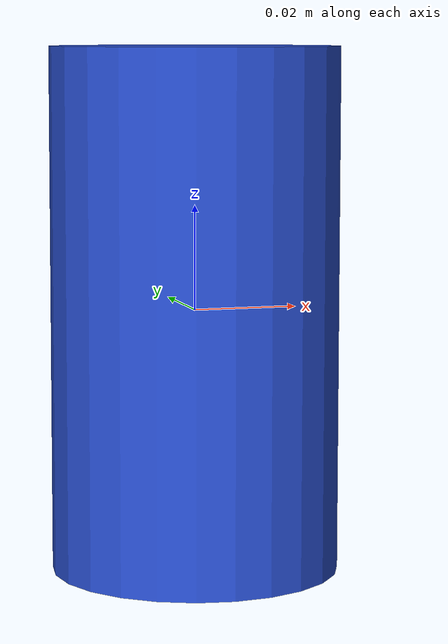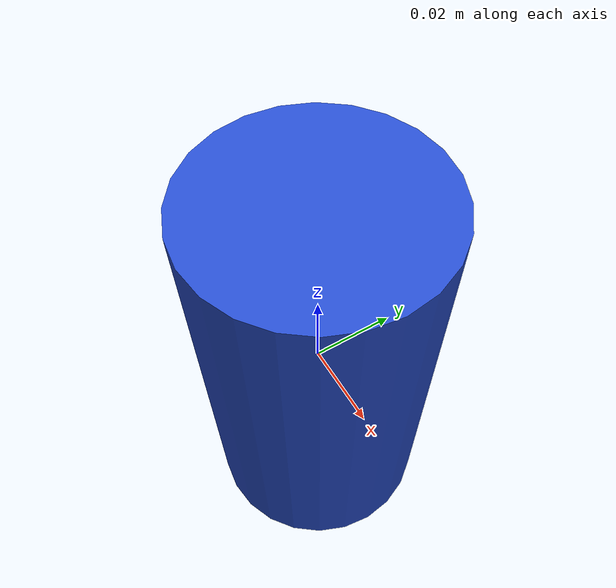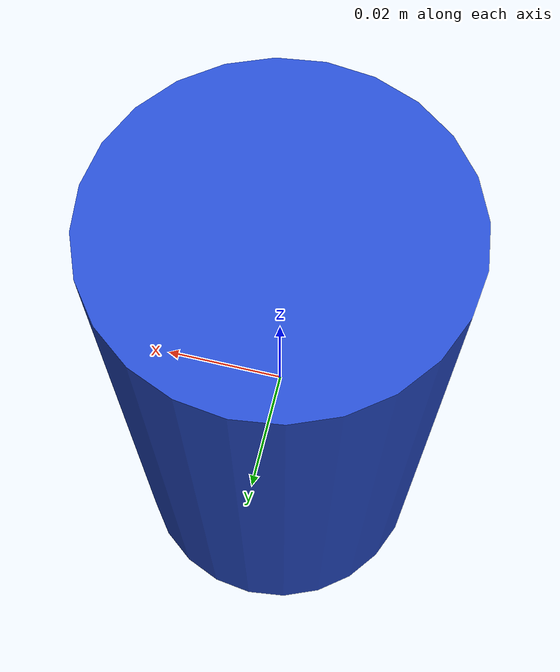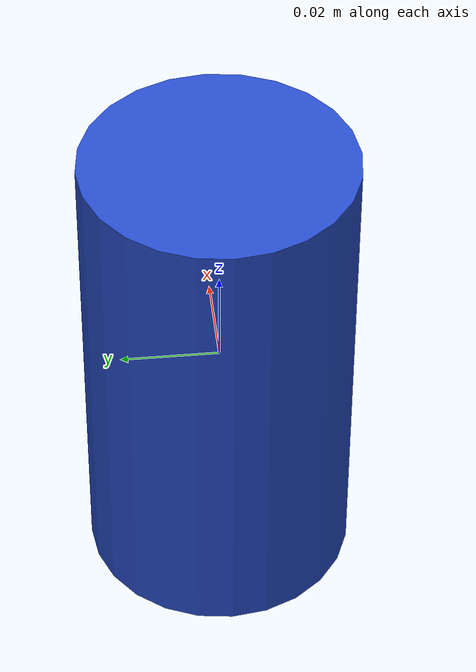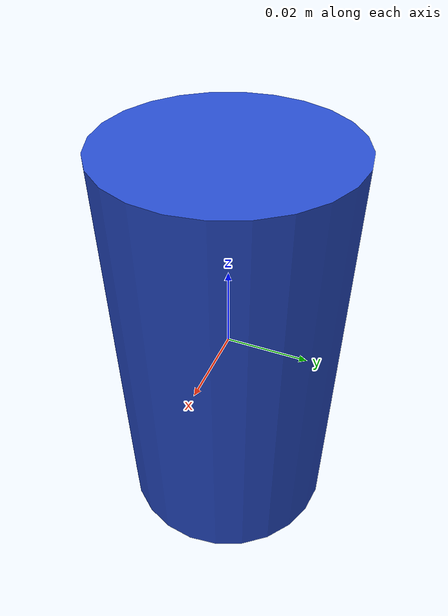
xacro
<robot name="object0">
    <link name="my_box">
      <inertial>
        <origin xyz="0 0 0" />
        <mass value="1.0" />
        <inertia  ixx="1.0" ixy="0.0"  ixz="0.0"  iyy="100.0"  iyz="0.0"  izz="1.0" />
      </inertial>
      <visual>
        <origin xyz="0 0 0"/>
        <geometry>
          <cylinder radius="0.0275" length="0.1" />
        </geometry>
      </visual>
      <collision>
        <origin xyz="0 0 0"/>
        <geometry>
          <cylinder radius="0.0275" length="0.1"  />
        </geometry>
      </collision>
    </link>
    <gazebo reference="my_box">
      <material>Gazebo/Blue</material>
    </gazebo>
  </robot>
